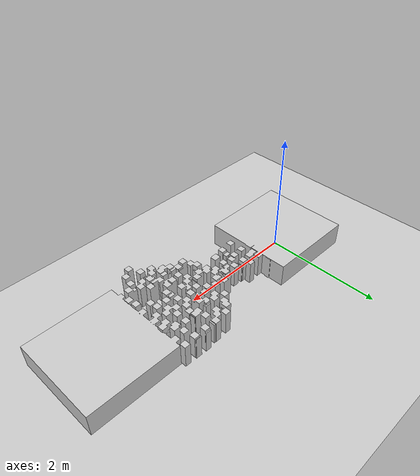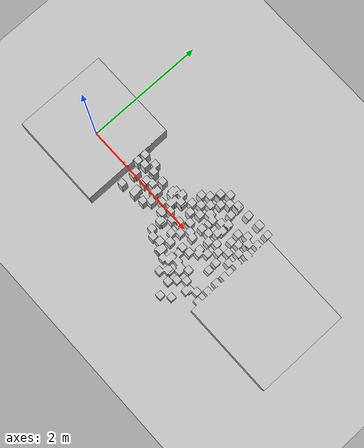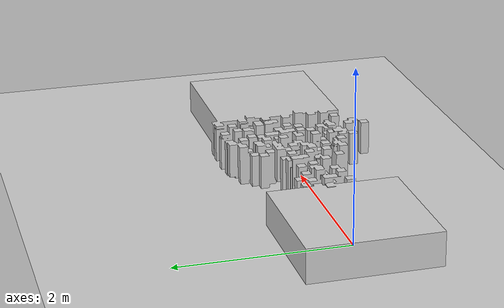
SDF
<?xml version="1.0" ?>
<sdf version="1.5">
    <world name="default">

        <physics type="ode">
        <max_step_size>0.001</max_step_size>
        <real_time_factor>1</real_time_factor>
        <real_time_update_rate>1000</real_time_update_rate>
        <gravity>0 0 -9.81</gravity>
            <ode>
                <solver>
                <type>quick</type>
                <iters>50</iters>
                <sor>1.3</sor>
                </solver>
                <constraints>
                <cfm>0.0</cfm>
                <erp>0.2</erp>
                <contact_max_correcting_vel>10.0</contact_max_correcting_vel>
                <contact_surface_layer>0.001</contact_surface_layer>
                </constraints>
            </ode>
        </physics>

        <scene>
        <shadows>false</shadows>
        </scene>
        <!-- A global light source -->
        <include>
            <uri>model://sun</uri>
        </include>
        <!-- A ground plane -->
        <include>
            <uri>model://ground_plane</uri>
        </include>
        <!-- environment blocks, obstacles or stairs -->
        <model name="static_environment">

        <static>true</static>
        <link name="course">
        <visual name="visual">
            <pose frame=''>0 0 0 0 0 0</pose>
            <geometry>
                <mesh><uri>model://stepping_stones_10cm_sparse.dae</uri></mesh>
            </geometry>
            <material>
            <script>
                <uri>file://media/materials/scripts/gazebo.material</uri>
                <material>Gazebo/Grey</material>
            </script>
            </material>
        </visual>
        <collision name="collision1">
            <pose frame=''>0 0 0 0 0 0</pose>
            <geometry>
                <mesh><uri>model://stepping_stones_10cm_sparse.dae</uri></mesh>
            </geometry>
        </collision></link>
        </model>

    </world>
</sdf>
